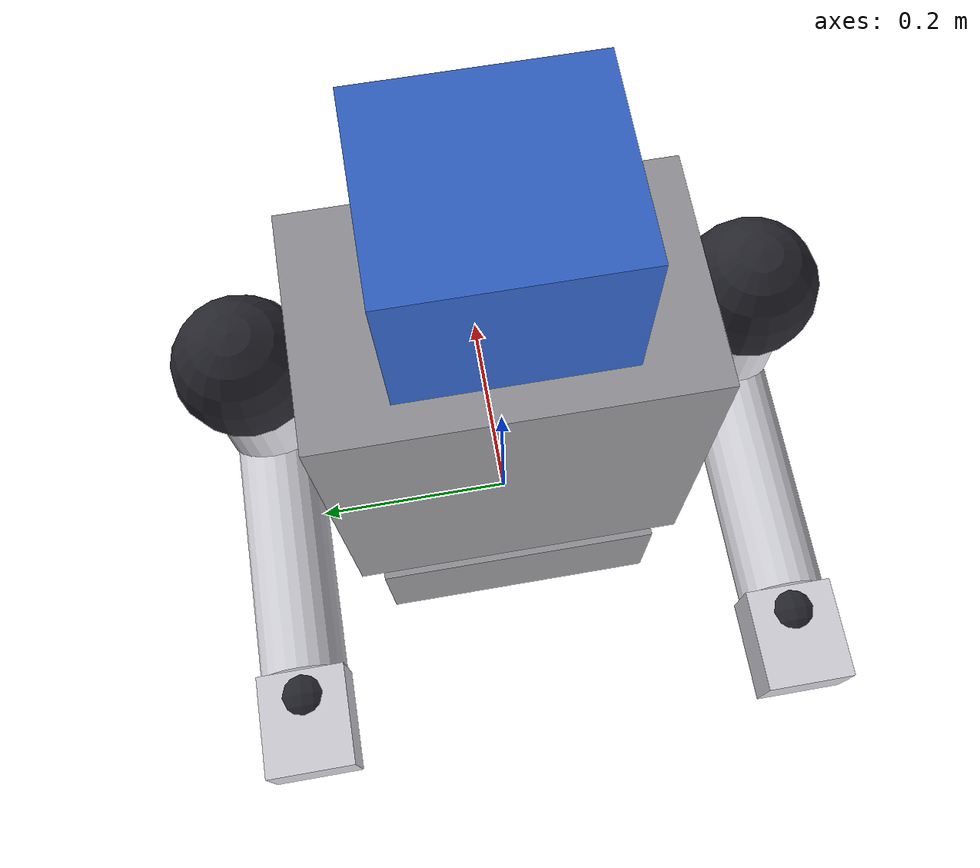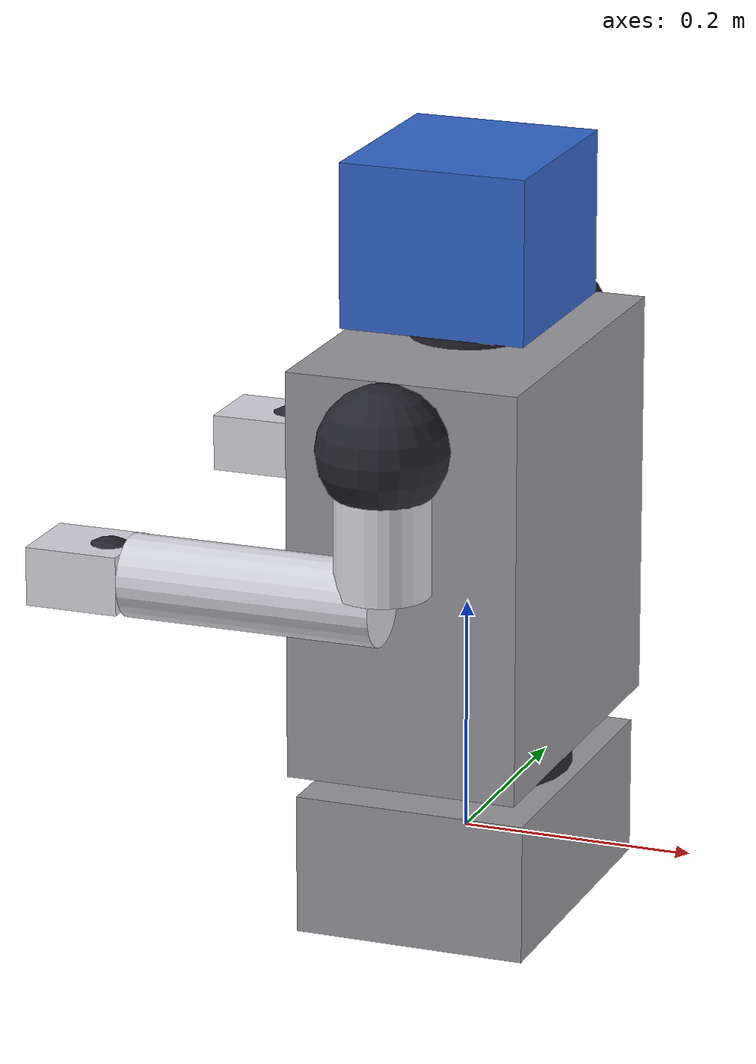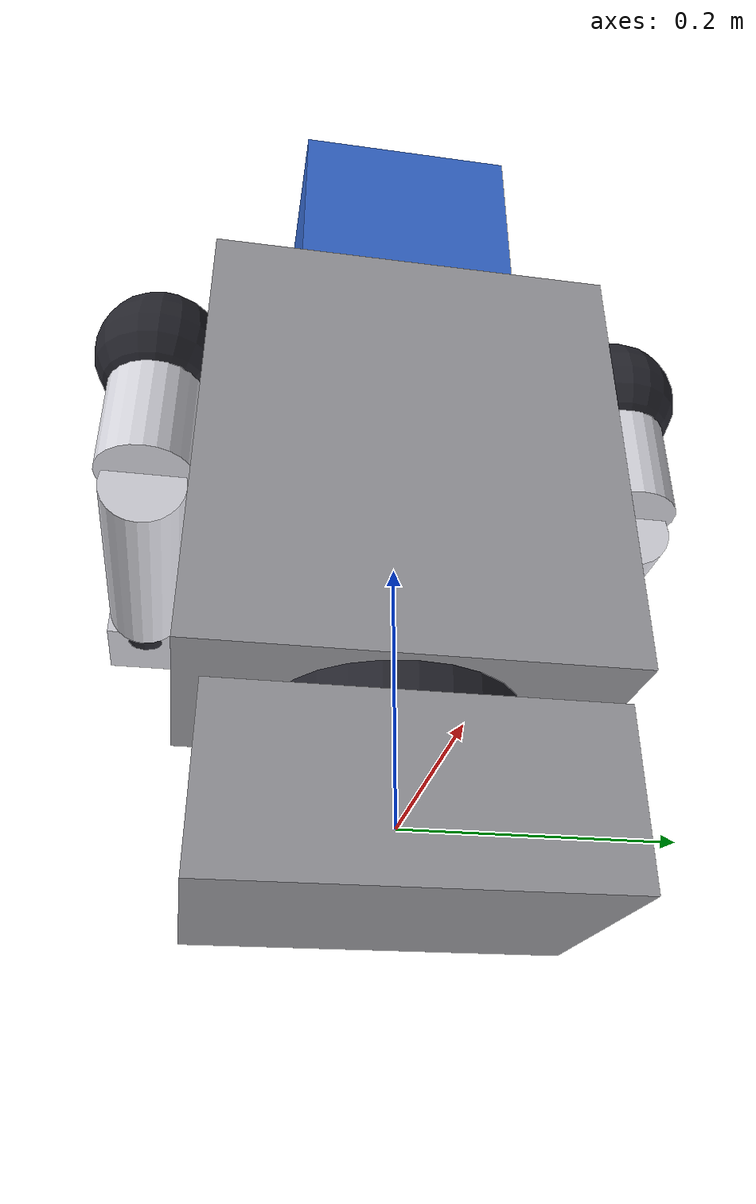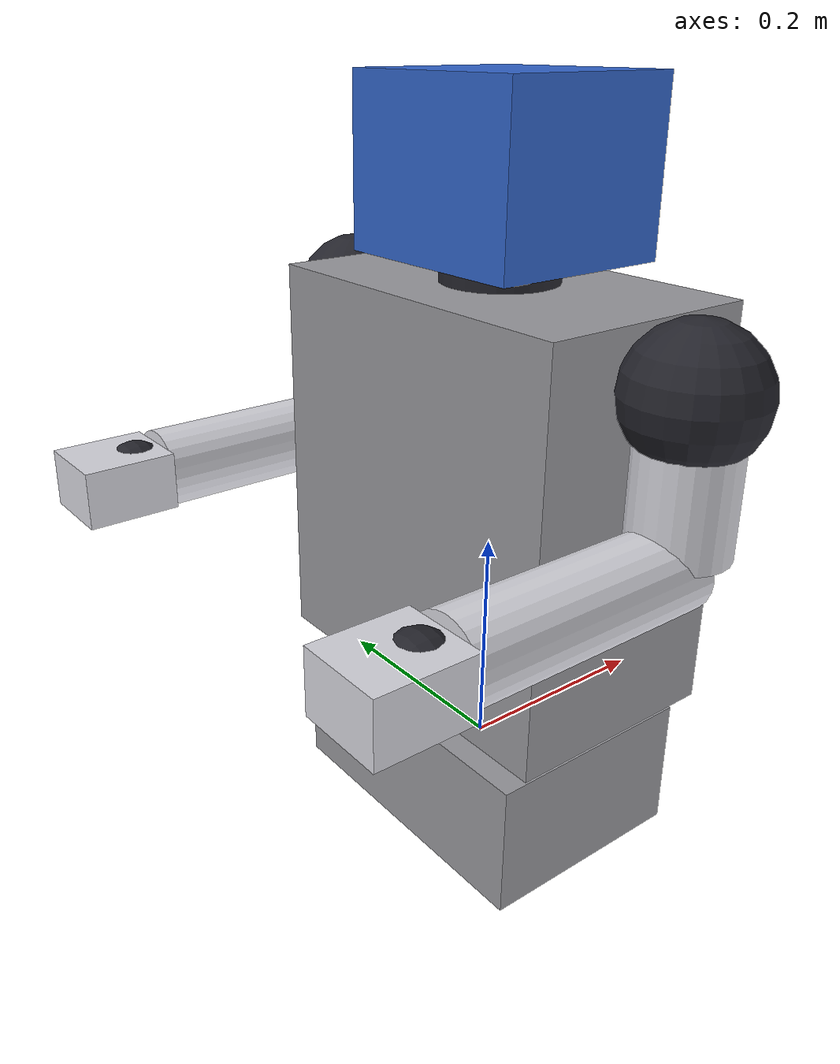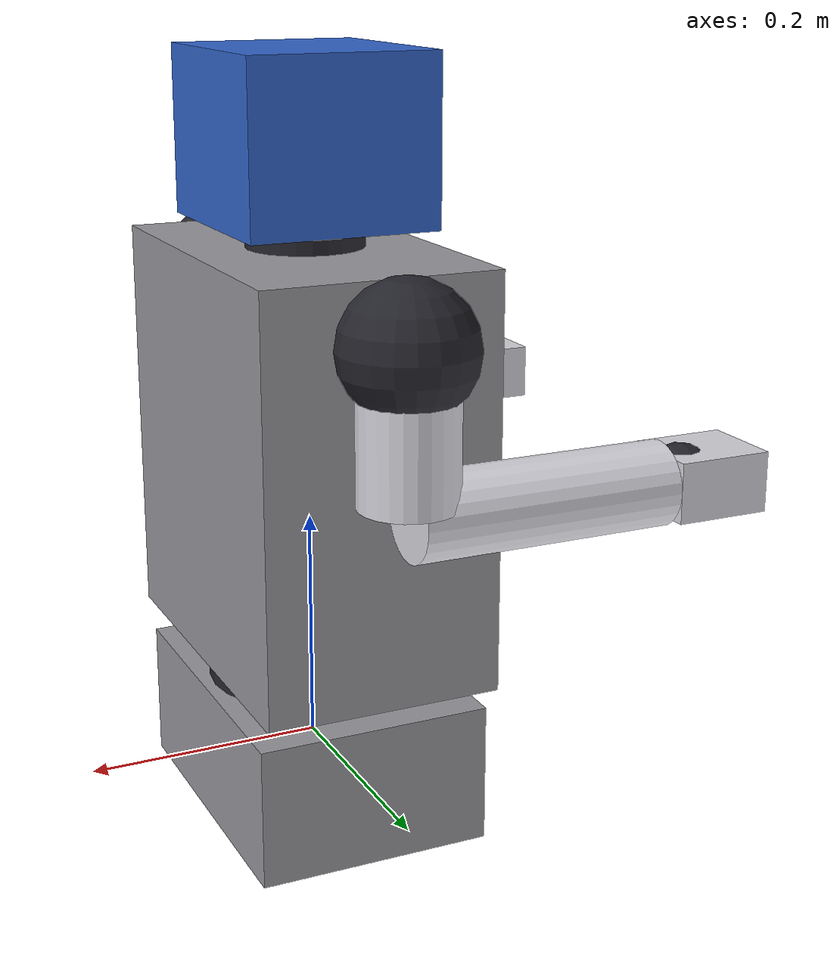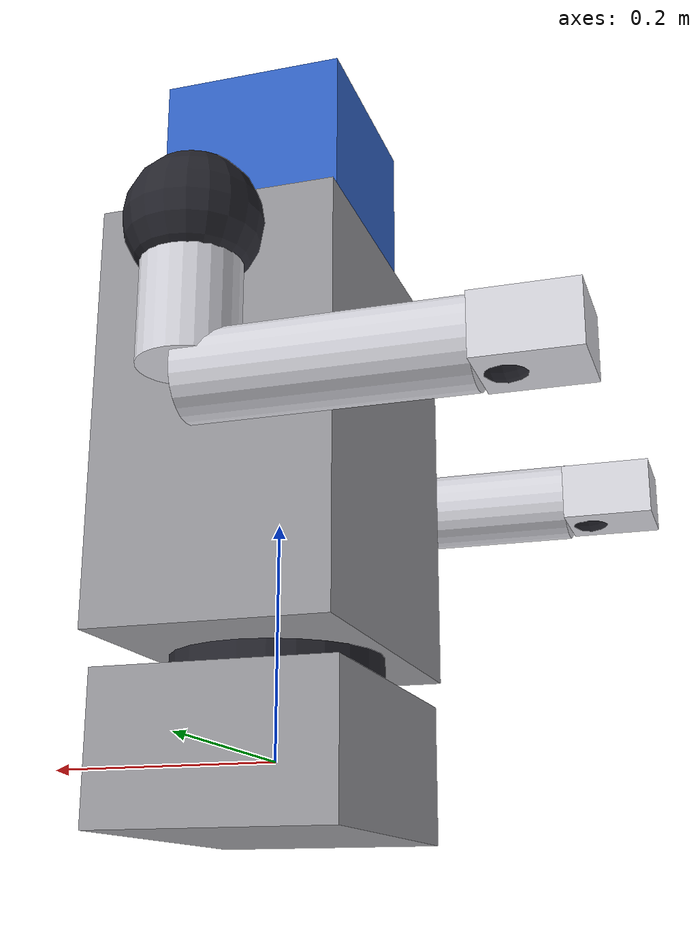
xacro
<?xml version="1.0"?>
<robot name="humanoid_v1" xmlns:xacro="http://www.ros.org/wiki/xacro">
  <xacro:include filename="$(find humanoid_description)/urdf/materials.xacro"/>
  <xacro:include filename="$(find humanoid_description)/urdf/torso.xacro"/>
  <xacro:include filename="$(find humanoid_description)/urdf/head.xacro"/>
  <xacro:include filename="$(find humanoid_description)/urdf/left_arm.xacro"/>
  <xacro:include filename="$(find humanoid_description)/urdf/right_arm.xacro"/>
  <xacro:include filename="$(find humanoid_description)/urdf/sensors.xacro"/>

  <!-- Base: pelvis origin. All dims in meters. PLACEHOLDER — measure rig (§48). -->
  <link name="base_link"/>
  <link name="pelvis_link">
    <visual>
      <origin xyz="0 0 0.0" rpy="0 0 0"/>
      <geometry><box size="0.20 0.28 0.12"/></geometry>
      <material name="torso_grey"/>
    </visual>
    <collision>
      <origin xyz="0 0 0.0" rpy="0 0 0"/>
      <geometry><box size="0.20 0.28 0.12"/></geometry>
    </collision>
    <inertial>
      <mass value="2.0"/>
      <origin xyz="0 0 0"/>
      <inertia ixx="0.02" ixy="0" ixz="0" iyy="0.02" iyz="0" izz="0.02"/>
    </inertial>
  </link>
  <joint name="base_to_pelvis" type="fixed">
    <parent link="base_link"/>
    <child link="pelvis_link"/>
    <origin xyz="0 0 0" rpy="0 0 0"/>
  </joint>

  <xacro:torso_chain/>
  <xacro:head_chain/>
  <xacro:left_arm_chain/>
  <xacro:right_arm_chain/>
  <xacro:sensor_links/>
</robot>

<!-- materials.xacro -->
<robot xmlns:xacro="http://www.ros.org/wiki/xacro">
  <material name="torso_grey"><color rgba="0.6 0.6 0.62 1.0"/></material>
  <material name="arm_white"><color rgba="0.85 0.85 0.88 1.0"/></material>
  <material name="head_blue"><color rgba="0.2 0.4 0.8 1.0"/></material>
  <material name="joint_dark"><color rgba="0.15 0.15 0.18 1.0"/></material>
  <material name="sensor_red"><color rgba="0.8 0.2 0.2 1.0"/></material>
  <material name="camera_black"><color rgba="0.05 0.05 0.05 1.0"/></material>
</robot>

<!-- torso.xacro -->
<!-- Torso chain: pelvis -> torso_yaw -> torso_pitch -> torso_link (spec sections 8, 22) -->
<robot xmlns:xacro="http://www.ros.org/wiki/xacro">
  <xacro:macro name="torso_chain">
    <link name="torso_yaw_link">
      <visual>
        <origin xyz="0 0 0.03" rpy="0 0 0"/>
        <geometry><cylinder radius="0.09" length="0.06"/></geometry>
        <material name="joint_dark"/>
      </visual>
      <inertial>
        <mass value="0.5"/>
        <origin xyz="0 0 0"/>
        <inertia ixx="0.005" ixy="0" ixz="0" iyy="0.005" iyz="0" izz="0.005"/>
      </inertial>
    </link>
    <joint name="torso_yaw" type="revolute">
      <parent link="pelvis_link"/>
      <child link="torso_yaw_link"/>
      <origin xyz="0 0 0.06" rpy="0 0 0"/>
      <axis xyz="0 0 1"/>
      <limit lower="-1.20" upper="1.20" effort="10" velocity="1.5"/>
    </joint>

    <link name="torso_link">
      <visual>
        <origin xyz="0 0 0.17" rpy="0 0 0"/>
        <geometry><box size="0.20 0.32 0.35"/></geometry>
        <material name="torso_grey"/>
      </visual>
      <collision>
        <origin xyz="0 0 0.17" rpy="0 0 0"/>
        <geometry><box size="0.20 0.32 0.35"/></geometry>
      </collision>
      <inertial>
        <mass value="3.0"/>
        <origin xyz="0 0 0.17"/>
        <inertia ixx="0.04" ixy="0" ixz="0" iyy="0.03" iyz="0" izz="0.04"/>
      </inertial>
    </link>
    <joint name="torso_pitch" type="revolute">
      <parent link="torso_yaw_link"/>
      <child link="torso_link"/>
      <origin xyz="0 0 0.03" rpy="0 0 0"/>
      <axis xyz="0 1 0"/>
      <limit lower="-0.40" upper="0.40" effort="10" velocity="1.5"/>
    </joint>
  </xacro:macro>
</robot>

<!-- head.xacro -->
<!-- Head: head_pan (PHYSICAL, DS3109MG) + head_tilt (SIMULATED). Cameras mount on head_link. -->
<robot xmlns:xacro="http://www.ros.org/wiki/xacro">
  <xacro:macro name="head_chain">
    <link name="head_pan_link">
      <visual>
        <origin xyz="0 0 0.02" rpy="0 0 0"/>
        <geometry><cylinder radius="0.05" length="0.04"/></geometry>
        <material name="joint_dark"/>
      </visual>
      <inertial>
        <mass value="0.2"/>
        <origin xyz="0 0 0"/>
        <inertia ixx="0.001" ixy="0" ixz="0" iyy="0.001" iyz="0" izz="0.001"/>
      </inertial>
    </link>
    <joint name="head_pan" type="revolute">
      <parent link="torso_link"/>
      <child link="head_pan_link"/>
      <!-- top of torso box (0.17 + 0.175 = 0.345) -->
      <origin xyz="0 0 0.345" rpy="0 0 0"/>
      <axis xyz="0 0 1"/>
      <limit lower="-1.40" upper="1.40" effort="5" velocity="3.0"/>
    </joint>

    <link name="head_link">
      <visual>
        <origin xyz="0 0 0.07" rpy="0 0 0"/>
        <geometry><box size="0.16 0.18 0.14"/></geometry>
        <material name="head_blue"/>
      </visual>
      <collision>
        <origin xyz="0 0 0.07" rpy="0 0 0"/>
        <geometry><box size="0.16 0.18 0.14"/></geometry>
      </collision>
      <inertial>
        <mass value="0.8"/>
        <origin xyz="0 0 0.07"/>
        <inertia ixx="0.005" ixy="0" ixz="0" iyy="0.005" iyz="0" izz="0.005"/>
      </inertial>
    </link>
    <joint name="head_tilt" type="revolute">
      <parent link="head_pan_link"/>
      <child link="head_link"/>
      <origin xyz="0 0 0.02" rpy="0 0 0"/>
      <axis xyz="0 1 0"/>
      <limit lower="-0.50" upper="0.50" effort="5" velocity="3.0"/>
    </joint>
  </xacro:macro>
</robot>

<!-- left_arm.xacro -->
<!-- Left arm 6-DOF (spec section 8). Only left_elbow_pitch is PHYSICAL in V1. -->
<robot xmlns:xacro="http://www.ros.org/wiki/xacro">
  <xacro:macro name="left_arm_chain">
    <!-- shoulder pitch -->
    <link name="left_shoulder_pitch_link">
      <visual>
        <origin xyz="0 0 0" rpy="0 0 0"/>
        <geometry><sphere radius="0.055"/></geometry>
        <material name="joint_dark"/>
      </visual>
      <inertial>
        <mass value="0.3"/>
        <origin xyz="0 0 0"/>
        <inertia ixx="0.001" ixy="0" ixz="0" iyy="0.001" iyz="0" izz="0.001"/>
      </inertial>
    </link>
    <joint name="left_shoulder_pitch" type="revolute">
      <parent link="torso_link"/>
      <child link="left_shoulder_pitch_link"/>
      <origin xyz="0 0.20 0.30" rpy="0 0 0"/>
      <axis xyz="0 1 0"/>
      <limit lower="-2.60" upper="2.60" effort="10" velocity="2.0"/>
    </joint>

    <!-- shoulder roll -->
    <link name="left_shoulder_roll_link">
      <visual>
        <origin xyz="0 0 0" rpy="0 0 0"/>
        <geometry><sphere radius="0.045"/></geometry>
        <material name="joint_dark"/>
      </visual>
      <inertial>
        <mass value="0.25"/>
        <origin xyz="0 0 0"/>
        <inertia ixx="0.001" ixy="0" ixz="0" iyy="0.001" iyz="0" izz="0.001"/>
      </inertial>
    </link>
    <joint name="left_shoulder_roll" type="revolute">
      <parent link="left_shoulder_pitch_link"/>
      <child link="left_shoulder_roll_link"/>
      <origin xyz="0 0 0" rpy="0 0 0"/>
      <axis xyz="1 0 0"/>
      <limit lower="-1.40" upper="1.40" effort="10" velocity="2.0"/>
    </joint>

    <!-- shoulder yaw -->
    <link name="left_shoulder_yaw_link">
      <visual>
        <origin xyz="0 0 -0.06" rpy="0 0 0"/>
        <geometry><cylinder radius="0.04" length="0.12"/></geometry>
        <material name="arm_white"/>
      </visual>
      <inertial>
        <mass value="0.4"/>
        <origin xyz="0 0 -0.06"/>
        <inertia ixx="0.002" ixy="0" ixz="0" iyy="0.002" iyz="0" izz="0.002"/>
      </inertial>
    </link>
    <joint name="left_shoulder_yaw" type="revolute">
      <parent link="left_shoulder_roll_link"/>
      <child link="left_shoulder_yaw_link"/>
      <origin xyz="0 0 0" rpy="0 0 0"/>
      <axis xyz="0 0 1"/>
      <limit lower="-1.40" upper="1.40" effort="10" velocity="2.0"/>
    </joint>

    <!-- elbow (PHYSICAL MG995) -->
    <link name="left_forearm_link">
      <visual>
        <origin xyz="0 0 -0.11" rpy="0 0 0"/>
        <geometry><cylinder radius="0.035" length="0.22"/></geometry>
        <material name="arm_white"/>
      </visual>
      <collision>
        <origin xyz="0 0 -0.11" rpy="0 0 0"/>
        <geometry><cylinder radius="0.035" length="0.22"/></geometry>
      </collision>
      <inertial>
        <mass value="0.4"/>
        <origin xyz="0 0 -0.11"/>
        <inertia ixx="0.002" ixy="0" ixz="0" iyy="0.002" iyz="0" izz="0.001"/>
      </inertial>
    </link>
    <joint name="left_elbow_pitch" type="revolute">
      <parent link="left_shoulder_yaw_link"/>
      <child link="left_forearm_link"/>
      <origin xyz="0 0 -0.13" rpy="0 0 0"/>
      <axis xyz="0 1 0"/>
      <limit lower="0.17" upper="2.97" effort="10" velocity="2.0"/>
    </joint>

    <!-- wrist pitch -->
    <link name="left_wrist_pitch_link">
      <visual>
        <origin xyz="0 0 -0.02" rpy="0 0 0"/>
        <geometry><sphere radius="0.03"/></geometry>
        <material name="joint_dark"/>
      </visual>
      <inertial>
        <mass value="0.15"/>
        <origin xyz="0 0 0"/>
        <inertia ixx="0.0005" ixy="0" ixz="0" iyy="0.0005" iyz="0" izz="0.0005"/>
      </inertial>
    </link>
    <joint name="left_wrist_pitch" type="revolute">
      <parent link="left_forearm_link"/>
      <child link="left_wrist_pitch_link"/>
      <origin xyz="0 0 -0.22" rpy="0 0 0"/>
      <axis xyz="0 1 0"/>
      <limit lower="-1.20" upper="1.20" effort="5" velocity="2.5"/>
    </joint>

    <!-- wrist yaw + hand (gripper future, section 42) -->
    <link name="left_hand_link">
      <visual>
        <origin xyz="0 0 -0.04" rpy="0 0 0"/>
        <geometry><box size="0.05 0.07 0.08"/></geometry>
        <material name="arm_white"/>
      </visual>
      <inertial>
        <mass value="0.15"/>
        <origin xyz="0 0 -0.04"/>
        <inertia ixx="0.0005" ixy="0" ixz="0" iyy="0.0005" iyz="0" izz="0.0005"/>
      </inertial>
    </link>
    <joint name="left_wrist_yaw" type="revolute">
      <parent link="left_wrist_pitch_link"/>
      <child link="left_hand_link"/>
      <origin xyz="0 0 0" rpy="0 0 0"/>
      <axis xyz="0 0 1"/>
      <limit lower="-1.20" upper="1.20" effort="5" velocity="2.5"/>
    </joint>
  </xacro:macro>
</robot>

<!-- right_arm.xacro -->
<!-- Right arm 6-DOF, mirror of left (spec section 8). Only right_elbow_pitch PHYSICAL. -->
<robot xmlns:xacro="http://www.ros.org/wiki/xacro">
  <xacro:macro name="right_arm_chain">
    <link name="right_shoulder_pitch_link">
      <visual>
        <origin xyz="0 0 0" rpy="0 0 0"/>
        <geometry><sphere radius="0.055"/></geometry>
        <material name="joint_dark"/>
      </visual>
      <inertial>
        <mass value="0.3"/>
        <origin xyz="0 0 0"/>
        <inertia ixx="0.001" ixy="0" ixz="0" iyy="0.001" iyz="0" izz="0.001"/>
      </inertial>
    </link>
    <joint name="right_shoulder_pitch" type="revolute">
      <parent link="torso_link"/>
      <child link="right_shoulder_pitch_link"/>
      <origin xyz="0 -0.20 0.30" rpy="0 0 0"/>
      <axis xyz="0 1 0"/>
      <limit lower="-2.60" upper="2.60" effort="10" velocity="2.0"/>
    </joint>

    <link name="right_shoulder_roll_link">
      <visual>
        <origin xyz="0 0 0" rpy="0 0 0"/>
        <geometry><sphere radius="0.045"/></geometry>
        <material name="joint_dark"/>
      </visual>
      <inertial>
        <mass value="0.25"/>
        <origin xyz="0 0 0"/>
        <inertia ixx="0.001" ixy="0" ixz="0" iyy="0.001" iyz="0" izz="0.001"/>
      </inertial>
    </link>
    <joint name="right_shoulder_roll" type="revolute">
      <parent link="right_shoulder_pitch_link"/>
      <child link="right_shoulder_roll_link"/>
      <origin xyz="0 0 0" rpy="0 0 0"/>
      <axis xyz="1 0 0"/>
      <limit lower="-1.40" upper="1.40" effort="10" velocity="2.0"/>
    </joint>

    <link name="right_shoulder_yaw_link">
      <visual>
        <origin xyz="0 0 -0.06" rpy="0 0 0"/>
        <geometry><cylinder radius="0.04" length="0.12"/></geometry>
        <material name="arm_white"/>
      </visual>
      <inertial>
        <mass value="0.4"/>
        <origin xyz="0 0 -0.06"/>
        <inertia ixx="0.002" ixy="0" ixz="0" iyy="0.002" iyz="0" izz="0.002"/>
      </inertial>
    </link>
    <joint name="right_shoulder_yaw" type="revolute">
      <parent link="right_shoulder_roll_link"/>
      <child link="right_shoulder_yaw_link"/>
      <origin xyz="0 0 0" rpy="0 0 0"/>
      <axis xyz="0 0 1"/>
      <limit lower="-1.40" upper="1.40" effort="10" velocity="2.0"/>
    </joint>

    <link name="right_forearm_link">
      <visual>
        <origin xyz="0 0 -0.11" rpy="0 0 0"/>
        <geometry><cylinder radius="0.035" length="0.22"/></geometry>
        <material name="arm_white"/>
      </visual>
      <collision>
        <origin xyz="0 0 -0.11" rpy="0 0 0"/>
        <geometry><cylinder radius="0.035" length="0.22"/></geometry>
      </collision>
      <inertial>
        <mass value="0.4"/>
        <origin xyz="0 0 -0.11"/>
        <inertia ixx="0.002" ixy="0" ixz="0" iyy="0.002" iyz="0" izz="0.001"/>
      </inertial>
    </link>
    <joint name="right_elbow_pitch" type="revolute">
      <parent link="right_shoulder_yaw_link"/>
      <child link="right_forearm_link"/>
      <origin xyz="0 0 -0.13" rpy="0 0 0"/>
      <axis xyz="0 1 0"/>
      <limit lower="0.17" upper="2.97" effort="10" velocity="2.0"/>
    </joint>

    <link name="right_wrist_pitch_link">
      <visual>
        <origin xyz="0 0 -0.02" rpy="0 0 0"/>
        <geometry><sphere radius="0.03"/></geometry>
        <material name="joint_dark"/>
      </visual>
      <inertial>
        <mass value="0.15"/>
        <origin xyz="0 0 0"/>
        <inertia ixx="0.0005" ixy="0" ixz="0" iyy="0.0005" iyz="0" izz="0.0005"/>
      </inertial>
    </link>
    <joint name="right_wrist_pitch" type="revolute">
      <parent link="right_forearm_link"/>
      <child link="right_wrist_pitch_link"/>
      <origin xyz="0 0 -0.22" rpy="0 0 0"/>
      <axis xyz="0 1 0"/>
      <limit lower="-1.20" upper="1.20" effort="5" velocity="2.5"/>
    </joint>

    <link name="right_hand_link">
      <visual>
        <origin xyz="0 0 -0.04" rpy="0 0 0"/>
        <geometry><box size="0.05 0.07 0.08"/></geometry>
        <material name="arm_white"/>
      </visual>
      <inertial>
        <mass value="0.15"/>
        <origin xyz="0 0 -0.04"/>
        <inertia ixx="0.0005" ixy="0" ixz="0" iyy="0.0005" iyz="0" izz="0.0005"/>
      </inertial>
    </link>
    <joint name="right_wrist_yaw" type="revolute">
      <parent link="right_wrist_pitch_link"/>
      <child link="right_hand_link"/>
      <origin xyz="0 0 0" rpy="0 0 0"/>
      <axis xyz="0 0 1"/>
      <limit lower="-1.20" upper="1.20" effort="5" velocity="2.5"/>
    </joint>
  </xacro:macro>
</robot>

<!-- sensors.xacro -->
<!-- Sensor mounting frames (spec sections 14-15, 17, 22). Offsets are PLACEHOLDER — measure rig. -->
<robot xmlns:xacro="http://www.ros.org/wiki/xacro">
  <xacro:macro name="sensor_links">
    <!-- IMU rigid on torso -->
    <link name="imu_link">
      <visual>
        <origin xyz="0 0 0" rpy="0 0 0"/>
        <geometry><box size="0.02 0.025 0.005"/></geometry>
        <material name="sensor_red"/>
      </visual>
      <inertial>
        <mass value="0.01"/>
        <origin xyz="0 0 0"/>
        <inertia ixx="0.00001" ixy="0" ixz="0" iyy="0.00001" iyz="0" izz="0.00001"/>
      </inertial>
    </link>
    <joint name="torso_to_imu" type="fixed">
      <parent link="torso_link"/>
      <child link="imu_link"/>
      <origin xyz="0 0 0.10" rpy="0 0 0"/>
    </joint>

    <!-- LiDAR above torso -->
    <link name="lidar_link">
      <visual>
        <origin xyz="0 0 0" rpy="0 0 0"/>
        <geometry><cylinder radius="0.05" length="0.07"/></geometry>
        <material name="joint_dark"/>
      </visual>
      <inertial>
        <mass value="0.2"/>
        <origin xyz="0 0 0"/>
        <inertia ixx="0.001" ixy="0" ixz="0" iyy="0.001" iyz="0" izz="0.001"/>
      </inertial>
    </link>
    <joint name="torso_to_lidar" type="fixed">
      <parent link="torso_link"/>
      <child link="lidar_link"/>
      <origin xyz="0 0 0.25" rpy="0 0 0"/>
    </joint>

    <!-- Stereo cameras on head -->
    <link name="camera_left_link">
      <visual>
        <origin xyz="0 0 0" rpy="0 0 0"/>
        <geometry><box size="0.02 0.02 0.02"/></geometry>
        <material name="camera_black"/>
      </visual>
      <inertial>
        <mass value="0.01"/>
        <origin xyz="0 0 0"/>
        <inertia ixx="0.00001" ixy="0" ixz="0" iyy="0.00001" iyz="0" izz="0.00001"/>
      </inertial>
    </link>
    <joint name="head_to_camera_left" type="fixed">
      <parent link="head_link"/>
      <child link="camera_left_link"/>
      <origin xyz="0.06 0.03 0.10" rpy="0 0 0"/>
    </joint>

    <link name="camera_right_link">
      <visual>
        <origin xyz="0 0 0" rpy="0 0 0"/>
        <geometry><box size="0.02 0.02 0.02"/></geometry>
        <material name="camera_black"/>
      </visual>
      <inertial>
        <mass value="0.01"/>
        <origin xyz="0 0 0"/>
        <inertia ixx="0.00001" ixy="0" ixz="0" iyy="0.00001" iyz="0" izz="0.00001"/>
      </inertial>
    </link>
    <joint name="head_to_camera_right" type="fixed">
      <parent link="head_link"/>
      <child link="camera_right_link"/>
      <origin xyz="0.06 -0.03 0.10" rpy="0 0 0"/>
    </joint>
  </xacro:macro>
</robot>
